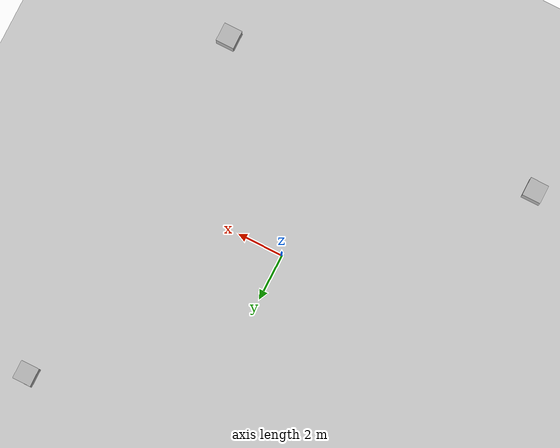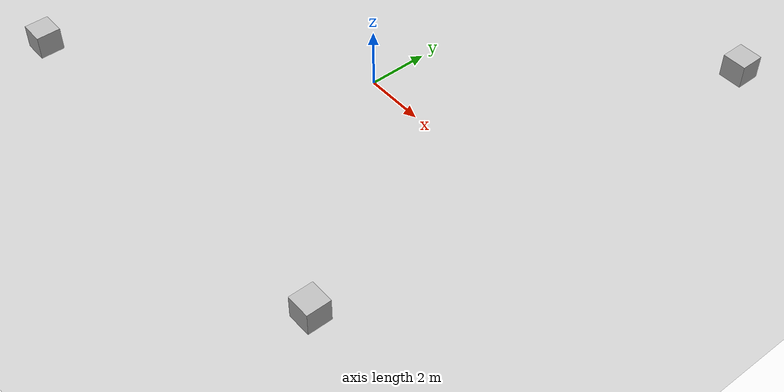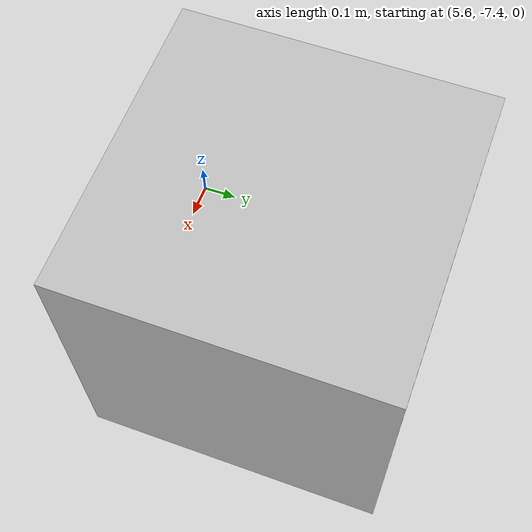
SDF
<sdf version="1.4">
 <world name="default">
  <light name="sun" type="directional">
   <pose>0 0 10 0 -0 0</pose>
   <diffuse>0.8 0.8 0.8 1</diffuse>
   <specular>0.2 0.2 0.2 1</specular>
   <attenuation>
    <range>1000</range>
    <constant>0.9</constant>
    <linear>0.01</linear>
    <quadratic>0.001</quadratic>
   </attenuation>
   <direction>-0.5 0.1 -0.9</direction>
  </light>
  <model name="ground_plane">
   <static>1</static>
   <link name="link">
    <collision name="collision">
     <geometry><plane><normal>0 0 1</normal><size>100 100</size></plane></geometry>
     <surface><friction><ode><mu>100</mu><mu2>50</mu2></ode></friction></surface>
    </collision>
    <visual name="visual">
     <cast_shadows>0</cast_shadows>
     <geometry><plane><normal>0 0 1</normal><size>100 100</size></plane></geometry>
     <material>
      <script><uri>file://media/materials/scripts/gazebo.material</uri><name>Gazebo/Grey</name></script>
     </material>
    </visual>
    <velocity_decay><linear>0</linear><angular>0</angular></velocity_decay>
   </link>
  </model>
  <gravity>0 0 -9.8</gravity>
  <magnetic_field>6e-06 2.3e-05 -4.2e-05</magnetic_field>
  <atmosphere type="adiabatic"/>
  <physics name="default_physics" default="0" type="ode">
   <max_step_size>0.001</max_step_size>
   <real_time_factor>1</real_time_factor>
   <real_time_update_rate>1000</real_time_update_rate>
   <gravity>0 0 -9.8</gravity>
  </physics>
  <scene><ambient>0.4 0.4 0.4 1</ambient><background>0.7 0.7 0.7 1</background><shadows>1</shadows></scene>
  <spherical_coordinates>
   <surface_model>EARTH_WGS84</surface_model>
   <latitude_deg>0</latitude_deg>
   <longitude_deg>0</longitude_deg>
   <elevation>0</elevation>
   <heading_deg>0</heading_deg>
  </spherical_coordinates>
  <model name="number1">
   <pose>6 -7 0.4 0 -3.14 0</pose>
   <static>1</static>
   <link name="link">
    <visual name="visual">
     <geometry><mesh><uri>model://number1/meshes/number.dae</uri></mesh></geometry>
     <material>
      <script>
       <uri>model://number1/materials/scripts</uri>
       <uri>model://number1/materials/textures</uri>
       <name>Number/One</name>
      </script>
     </material>
    </visual>
    <velocity_decay><linear>0</linear><angular>0</angular></velocity_decay>
   </link>
  </model>
  <model name="number2">
   <pose>-8 -7 0.4 0 -0 0</pose>
   <static>1</static>
   <link name="link">
    <visual name="visual">
     <geometry><mesh><uri>model://number1/meshes/number.dae</uri></mesh></geometry>
     <material>
      <script>
       <uri>model://number2/materials/scripts</uri>
       <uri>model://number2/materials/textures</uri>
       <name>Number/Two</name>
      </script>
     </material>
    </visual>
    <velocity_decay><linear>0</linear><angular>0</angular></velocity_decay>
   </link>
  </model>
  <model name="number3">
   <pose>7 9 0.4 0 -0 0</pose>
   <static>1</static>
   <link name="link">
    <visual name="visual">
     <geometry><mesh><uri>model://number1/meshes/number.dae</uri></mesh></geometry>
     <material>
      <script>
       <uri>model://number3/materials/scripts</uri>
       <uri>model://number3/materials/textures</uri>
       <name>Number/Three</name>
      </script>
     </material>
    </visual>
    <velocity_decay><linear>0</linear><angular>0</angular></velocity_decay>
   </link>
  </model>
 </world>
</sdf>
